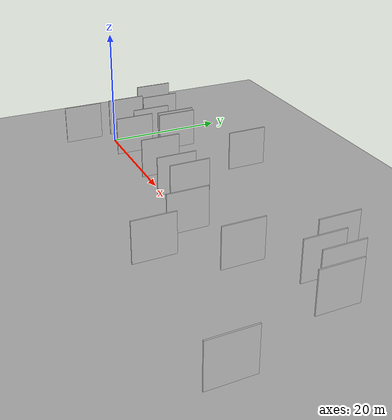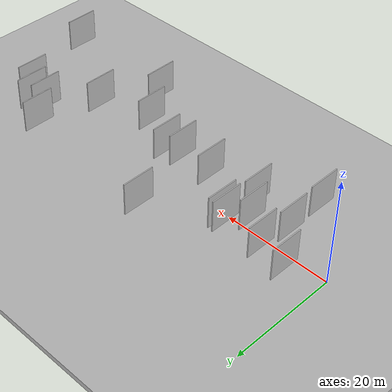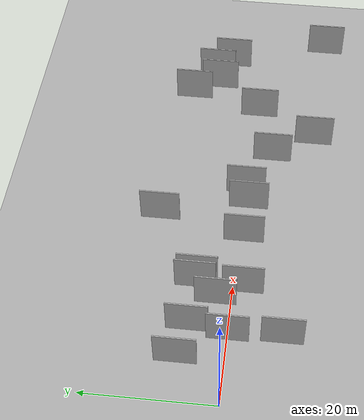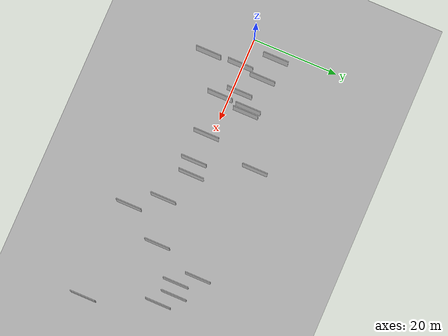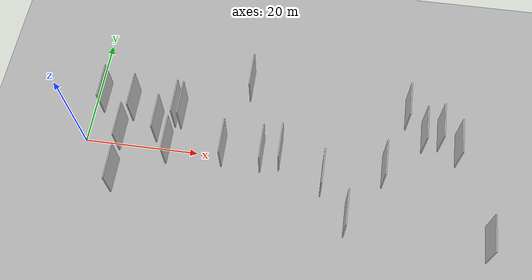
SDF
<?xml version="1.0" encoding="utf-8"?>

<sdf version="1.6">

   <world name="default">

      <gui fullscreen="0">

         <camera name="user_camera">

            <pose>-15 0 4.57585 0 0 0</pose>

            <view_controller>orbit</view_controller>

         </camera>

      </gui>

      <scene>

         <sky>

           <clouds>

             <speed>12</speed>

           </clouds>

         </sky>

         <ambient>0.4 0.4 0.4 1</ambient>

         <background>0.7 0.7 0.7 1</background>

         <shadows>1</shadows>

      </scene>

      <gravity>0 0 -9.8066</gravity>

      <magnetic_field>6e-06 2.3e-05 -4.2e-05</magnetic_field>

      <physics default="0" name="default_physics" type="ode">

         <ode>

            <solver>

               <type>quick</type>

               <iters>10</iters>

               <sor>1.0</sor>

               <use_dynamic_moi_rescaling>0</use_dynamic_moi_rescaling>

            </solver>

            <constraints>

               <cfm>0</cfm>

               <erp>0.2</erp>

               <contact_max_correcting_vel>100</contact_max_correcting_vel>

               <contact_surface_layer>0.001</contact_surface_layer>

            </constraints>

         </ode>

         <max_step_size>0.004</max_step_size>

         <real_time_factor>1</real_time_factor>

         <real_time_update_rate>250</real_time_update_rate>

      </physics>

      <light name="sun" type="directional">

         <cast_shadows>1</cast_shadows>

         <pose>0 0 10 0 0 0</pose>

         <diffuse>0.8 0.8 0.8 1</diffuse>

         <specular>0.2 0.2 0.2 1</specular>

         <attenuation>

            <range>1000</range>

            <constant>0.9</constant>

            <linear>0.01</linear>

            <quadratic>0.001</quadratic>

         </attenuation>

         <direction>-0.5 0.1 -0.9</direction>

      </light>

      <include>

         <name>ground_plane_1</name>

         <uri>model://HANNAS_ground_plane</uri>

         <pose>0 0 0  0 0 0</pose>

      </include>

      <include>

         <name>ground_plane_2</name>

         <uri>model://HANNAS_ground_plane</uri>

         <pose>100 0 0  0 0 0</pose>

      </include>

      <model name="HANNAS_wall_1">

         <static>1</static>

         <pose frame="">63.9856 4.0435 5.0 0.000000 0.000000 1.570796</pose>

         <link name="link">

            <pose frame="">0 0 3.00 0 0 0</pose>

            <collision name="collision">

               <geometry>

                  <box>

                     <size>6.00 0.2 6.00</size>

                  </box>

               </geometry>

               <max_contacts>10</max_contacts>

               <surface>

                  <contact>

                     <ode/>

                  </contact>

                  <bounce/>

                  <friction>

                     <torsional>

                        <ode/>

                     </torsional>

                     <ode/>

                  </friction>

               </surface>

            </collision>

            <visual name="visual">

               <cast_shadows>0</cast_shadows>

               <geometry>

                  <box>

                     <size>6.00 0.2 6.00</size>

                  </box>

               </geometry>

               <material>

                  <script>

                     <uri>model://HANNAS_wall/materials/scripts</uri>

                     <uri>model://HANNAS_wall/materials/textures</uri>

                     <name>vrc/HANNAS_wall</name>

                  </script>

               </material>

            </visual>

            <self_collide>0</self_collide>

            <enable_wind>0</enable_wind>

            <kinematic>0</kinematic>

         </link>

      </model>

      <model name="HANNAS_wall_2">

         <static>1</static>

         <pose frame="">55.3651 9.8947 5.0 0.000000 0.000000 1.570796</pose>

         <link name="link">

            <pose frame="">0 0 3.00 0 0 0</pose>

            <collision name="collision">

               <geometry>

                  <box>

                     <size>6.00 0.2 6.00</size>

                  </box>

               </geometry>

               <max_contacts>10</max_contacts>

               <surface>

                  <contact>

                     <ode/>

                  </contact>

                  <bounce/>

                  <friction>

                     <torsional>

                        <ode/>

                     </torsional>

                     <ode/>

                  </friction>

               </surface>

            </collision>

            <visual name="visual">

               <cast_shadows>0</cast_shadows>

               <geometry>

                  <box>

                     <size>6.00 0.2 6.00</size>

                  </box>

               </geometry>

               <material>

                  <script>

                     <uri>model://HANNAS_wall/materials/scripts</uri>

                     <uri>model://HANNAS_wall/materials/textures</uri>

                     <name>vrc/HANNAS_wall</name>

                  </script>

               </material>

            </visual>

            <self_collide>0</self_collide>

            <enable_wind>0</enable_wind>

            <kinematic>0</kinematic>

         </link>

      </model>

      <model name="HANNAS_wall_3">

         <static>1</static>

         <pose frame="">16.2559 5.2080 5.0 0.000000 0.000000 1.570796</pose>

         <link name="link">

            <pose frame="">0 0 3.00 0 0 0</pose>

            <collision name="collision">

               <geometry>

                  <box>

                     <size>6.00 0.2 6.00</size>

                  </box>

               </geometry>

               <max_contacts>10</max_contacts>

               <surface>

                  <contact>

                     <ode/>

                  </contact>

                  <bounce/>

                  <friction>

                     <torsional>

                        <ode/>

                     </torsional>

                     <ode/>

                  </friction>

               </surface>

            </collision>

            <visual name="visual">

               <cast_shadows>0</cast_shadows>

               <geometry>

                  <box>

                     <size>6.00 0.2 6.00</size>

                  </box>

               </geometry>

               <material>

                  <script>

                     <uri>model://HANNAS_wall/materials/scripts</uri>

                     <uri>model://HANNAS_wall/materials/textures</uri>

                     <name>vrc/HANNAS_wall</name>

                  </script>

               </material>

            </visual>

            <self_collide>0</self_collide>

            <enable_wind>0</enable_wind>

            <kinematic>0</kinematic>

         </link>

      </model>

      <model name="HANNAS_wall_4">

         <static>1</static>

         <pose frame="">17.2977 5.0388 5.0 0.000000 0.000000 1.570796</pose>

         <link name="link">

            <pose frame="">0 0 3.00 0 0 0</pose>

            <collision name="collision">

               <geometry>

                  <box>

                     <size>6.00 0.2 6.00</size>

                  </box>

               </geometry>

               <max_contacts>10</max_contacts>

               <surface>

                  <contact>

                     <ode/>

                  </contact>

                  <bounce/>

                  <friction>

                     <torsional>

                        <ode/>

                     </torsional>

                     <ode/>

                  </friction>

               </surface>

            </collision>

            <visual name="visual">

               <cast_shadows>0</cast_shadows>

               <geometry>

                  <box>

                     <size>6.00 0.2 6.00</size>

                  </box>

               </geometry>

               <material>

                  <script>

                     <uri>model://HANNAS_wall/materials/scripts</uri>

                     <uri>model://HANNAS_wall/materials/textures</uri>

                     <name>vrc/HANNAS_wall</name>

                  </script>

               </material>

            </visual>

            <self_collide>0</self_collide>

            <enable_wind>0</enable_wind>

            <kinematic>0</kinematic>

         </link>

      </model>

      <model name="HANNAS_wall_5">

         <static>1</static>

         <pose frame="">52.0070 -1.3309 5.0 0.000000 0.000000 1.570796</pose>

         <link name="link">

            <pose frame="">0 0 3.00 0 0 0</pose>

            <collision name="collision">

               <geometry>

                  <box>

                     <size>6.00 0.2 6.00</size>

                  </box>

               </geometry>

               <max_contacts>10</max_contacts>

               <surface>

                  <contact>

                     <ode/>

                  </contact>

                  <bounce/>

                  <friction>

                     <torsional>

                        <ode/>

                     </torsional>

                     <ode/>

                  </friction>

               </surface>

            </collision>

            <visual name="visual">

               <cast_shadows>0</cast_shadows>

               <geometry>

                  <box>

                     <size>6.00 0.2 6.00</size>

                  </box>

               </geometry>

               <material>

                  <script>

                     <uri>model://HANNAS_wall/materials/scripts</uri>

                     <uri>model://HANNAS_wall/materials/textures</uri>

                     <name>vrc/HANNAS_wall</name>

                  </script>

               </material>

            </visual>

            <self_collide>0</self_collide>

            <enable_wind>0</enable_wind>

            <kinematic>0</kinematic>

         </link>

      </model>

      <model name="HANNAS_wall_6">

         <static>1</static>

         <pose frame="">61.0086 6.5382 5.0 0.000000 0.000000 1.570796</pose>

         <link name="link">

            <pose frame="">0 0 3.00 0 0 0</pose>

            <collision name="collision">

               <geometry>

                  <box>

                     <size>6.00 0.2 6.00</size>

                  </box>

               </geometry>

               <max_contacts>10</max_contacts>

               <surface>

                  <contact>

                     <ode/>

                  </contact>

                  <bounce/>

                  <friction>

                     <torsional>

                        <ode/>

                     </torsional>

                     <ode/>

                  </friction>

               </surface>

            </collision>

            <visual name="visual">

               <cast_shadows>0</cast_shadows>

               <geometry>

                  <box>

                     <size>6.00 0.2 6.00</size>

                  </box>

               </geometry>

               <material>

                  <script>

                     <uri>model://HANNAS_wall/materials/scripts</uri>

                     <uri>model://HANNAS_wall/materials/textures</uri>

                     <name>vrc/HANNAS_wall</name>

                  </script>

               </material>

            </visual>

            <self_collide>0</self_collide>

            <enable_wind>0</enable_wind>

            <kinematic>0</kinematic>

         </link>

      </model>

      <model name="HANNAS_wall_7">

         <static>1</static>

         <pose frame="">16.0173 -1.7031 5.0 0.000000 0.000000 1.570796</pose>

         <link name="link">

            <pose frame="">0 0 3.00 0 0 0</pose>

            <collision name="collision">

               <geometry>

                  <box>

                     <size>6.00 0.2 6.00</size>

                  </box>

               </geometry>

               <max_contacts>10</max_contacts>

               <surface>

                  <contact>

                     <ode/>

                  </contact>

                  <bounce/>

                  <friction>

                     <torsional>

                        <ode/>

                     </torsional>

                     <ode/>

                  </friction>

               </surface>

            </collision>

            <visual name="visual">

               <cast_shadows>0</cast_shadows>

               <geometry>

                  <box>

                     <size>6.00 0.2 6.00</size>

                  </box>

               </geometry>

               <material>

                  <script>

                     <uri>model://HANNAS_wall/materials/scripts</uri>

                     <uri>model://HANNAS_wall/materials/textures</uri>

                     <name>vrc/HANNAS_wall</name>

                  </script>

               </material>

            </visual>

            <self_collide>0</self_collide>

            <enable_wind>0</enable_wind>

            <kinematic>0</kinematic>

         </link>

      </model>

      <model name="HANNAS_wall_8">

         <static>1</static>

         <pose frame="">8.1097 -7.8598 5.0 0.000000 0.000000 1.570796</pose>

         <link name="link">

            <pose frame="">0 0 3.00 0 0 0</pose>

            <collision name="collision">

               <geometry>

                  <box>

                     <size>6.00 0.2 6.00</size>

                  </box>

               </geometry>

               <max_contacts>10</max_contacts>

               <surface>

                  <contact>

                     <ode/>

                  </contact>

                  <bounce/>

                  <friction>

                     <torsional>

                        <ode/>

                     </torsional>

                     <ode/>

                  </friction>

               </surface>

            </collision>

            <visual name="visual">

               <cast_shadows>0</cast_shadows>

               <geometry>

                  <box>

                     <size>6.00 0.2 6.00</size>

                  </box>

               </geometry>

               <material>

                  <script>

                     <uri>model://HANNAS_wall/materials/scripts</uri>

                     <uri>model://HANNAS_wall/materials/textures</uri>

                     <name>vrc/HANNAS_wall</name>

                  </script>

               </material>

            </visual>

            <self_collide>0</self_collide>

            <enable_wind>0</enable_wind>

            <kinematic>0</kinematic>

         </link>

      </model>

      <model name="HANNAS_wall_9">

         <static>1</static>

         <pose frame="">42.1483 -4.1487 5.0 0.000000 0.000000 1.570796</pose>

         <link name="link">

            <pose frame="">0 0 3.00 0 0 0</pose>

            <collision name="collision">

               <geometry>

                  <box>

                     <size>6.00 0.2 6.00</size>

                  </box>

               </geometry>

               <max_contacts>10</max_contacts>

               <surface>

                  <contact>

                     <ode/>

                  </contact>

                  <bounce/>

                  <friction>

                     <torsional>

                        <ode/>

                     </torsional>

                     <ode/>

                  </friction>

               </surface>

            </collision>

            <visual name="visual">

               <cast_shadows>0</cast_shadows>

               <geometry>

                  <box>

                     <size>6.00 0.2 6.00</size>

                  </box>

               </geometry>

               <material>

                  <script>

                     <uri>model://HANNAS_wall/materials/scripts</uri>

                     <uri>model://HANNAS_wall/materials/textures</uri>

                     <name>vrc/HANNAS_wall</name>

                  </script>

               </material>

            </visual>

            <self_collide>0</self_collide>

            <enable_wind>0</enable_wind>

            <kinematic>0</kinematic>

         </link>

      </model>

      <model name="HANNAS_wall_10">

         <static>1</static>

         <pose frame="">58.2810 5.8237 5.0 0.000000 0.000000 1.570796</pose>

         <link name="link">

            <pose frame="">0 0 3.00 0 0 0</pose>

            <collision name="collision">

               <geometry>

                  <box>

                     <size>6.00 0.2 6.00</size>

                  </box>

               </geometry>

               <max_contacts>10</max_contacts>

               <surface>

                  <contact>

                     <ode/>

                  </contact>

                  <bounce/>

                  <friction>

                     <torsional>

                        <ode/>

                     </torsional>

                     <ode/>

                  </friction>

               </surface>

            </collision>

            <visual name="visual">

               <cast_shadows>0</cast_shadows>

               <geometry>

                  <box>

                     <size>6.00 0.2 6.00</size>

                  </box>

               </geometry>

               <material>

                  <script>

                     <uri>model://HANNAS_wall/materials/scripts</uri>

                     <uri>model://HANNAS_wall/materials/textures</uri>

                     <name>vrc/HANNAS_wall</name>

                  </script>

               </material>

            </visual>

            <self_collide>0</self_collide>

            <enable_wind>0</enable_wind>

            <kinematic>0</kinematic>

         </link>

      </model>

      <model name="HANNAS_wall_11">

         <static>1</static>

         <pose frame="">3.5035 6.4516 5.0 0.000000 0.000000 1.570796</pose>

         <link name="link">

            <pose frame="">0 0 3.00 0 0 0</pose>

            <collision name="collision">

               <geometry>

                  <box>

                     <size>6.00 0.2 6.00</size>

                  </box>

               </geometry>

               <max_contacts>10</max_contacts>

               <surface>

                  <contact>

                     <ode/>

                  </contact>

                  <bounce/>

                  <friction>

                     <torsional>

                        <ode/>

                     </torsional>

                     <ode/>

                  </friction>

               </surface>

            </collision>

            <visual name="visual">

               <cast_shadows>0</cast_shadows>

               <geometry>

                  <box>

                     <size>6.00 0.2 6.00</size>

                  </box>

               </geometry>

               <material>

                  <script>

                     <uri>model://HANNAS_wall/materials/scripts</uri>

                     <uri>model://HANNAS_wall/materials/textures</uri>

                     <name>vrc/HANNAS_wall</name>

                  </script>

               </material>

            </visual>

            <self_collide>0</self_collide>

            <enable_wind>0</enable_wind>

            <kinematic>0</kinematic>

         </link>

      </model>

      <model name="HANNAS_wall_12">

         <static>1</static>

         <pose frame="">13.6636 2.0164 5.0 0.000000 0.000000 1.570796</pose>

         <link name="link">

            <pose frame="">0 0 3.00 0 0 0</pose>

            <collision name="collision">

               <geometry>

                  <box>

                     <size>6.00 0.2 6.00</size>

                  </box>

               </geometry>

               <max_contacts>10</max_contacts>

               <surface>

                  <contact>

                     <ode/>

                  </contact>

                  <bounce/>

                  <friction>

                     <torsional>

                        <ode/>

                     </torsional>

                     <ode/>

                  </friction>

               </surface>

            </collision>

            <visual name="visual">

               <cast_shadows>0</cast_shadows>

               <geometry>

                  <box>

                     <size>6.00 0.2 6.00</size>

                  </box>

               </geometry>

               <material>

                  <script>

                     <uri>model://HANNAS_wall/materials/scripts</uri>

                     <uri>model://HANNAS_wall/materials/textures</uri>

                     <name>vrc/HANNAS_wall</name>

                  </script>

               </material>

            </visual>

            <self_collide>0</self_collide>

            <enable_wind>0</enable_wind>

            <kinematic>0</kinematic>

         </link>

      </model>

      <model name="HANNAS_wall_13">

         <static>1</static>

         <pose frame="">69.0546 -11.7639 5.0 0.000000 0.000000 1.570796</pose>

         <link name="link">

            <pose frame="">0 0 3.00 0 0 0</pose>

            <collision name="collision">

               <geometry>

                  <box>

                     <size>6.00 0.2 6.00</size>

                  </box>

               </geometry>

               <max_contacts>10</max_contacts>

               <surface>

                  <contact>

                     <ode/>

                  </contact>

                  <bounce/>

                  <friction>

                     <torsional>

                        <ode/>

                     </torsional>

                     <ode/>

                  </friction>

               </surface>

            </collision>

            <visual name="visual">

               <cast_shadows>0</cast_shadows>

               <geometry>

                  <box>

                     <size>6.00 0.2 6.00</size>

                  </box>

               </geometry>

               <material>

                  <script>

                     <uri>model://HANNAS_wall/materials/scripts</uri>

                     <uri>model://HANNAS_wall/materials/textures</uri>

                     <name>vrc/HANNAS_wall</name>

                  </script>

               </material>

            </visual>

            <self_collide>0</self_collide>

            <enable_wind>0</enable_wind>

            <kinematic>0</kinematic>

         </link>

      </model>

      <model name="HANNAS_wall_14">

         <static>1</static>

         <pose frame="">31.8124 -1.2147 5.0 0.000000 0.000000 1.570796</pose>

         <link name="link">

            <pose frame="">0 0 3.00 0 0 0</pose>

            <collision name="collision">

               <geometry>

                  <box>

                     <size>6.00 0.2 6.00</size>

                  </box>

               </geometry>

               <max_contacts>10</max_contacts>

               <surface>

                  <contact>

                     <ode/>

                  </contact>

                  <bounce/>

                  <friction>

                     <torsional>

                        <ode/>

                     </torsional>

                     <ode/>

                  </friction>

               </surface>

            </collision>

            <visual name="visual">

               <cast_shadows>0</cast_shadows>

               <geometry>

                  <box>

                     <size>6.00 0.2 6.00</size>

                  </box>

               </geometry>

               <material>

                  <script>

                     <uri>model://HANNAS_wall/materials/scripts</uri>

                     <uri>model://HANNAS_wall/materials/textures</uri>

                     <name>vrc/HANNAS_wall</name>

                  </script>

               </material>

            </visual>

            <self_collide>0</self_collide>

            <enable_wind>0</enable_wind>

            <kinematic>0</kinematic>

         </link>

      </model>

      <model name="HANNAS_wall_15">

         <static>1</static>

         <pose frame="">7.8110 -0.2627 5.0 0.000000 0.000000 1.570796</pose>

         <link name="link">

            <pose frame="">0 0 3.00 0 0 0</pose>

            <collision name="collision">

               <geometry>

                  <box>

                     <size>6.00 0.2 6.00</size>

                  </box>

               </geometry>

               <max_contacts>10</max_contacts>

               <surface>

                  <contact>

                     <ode/>

                  </contact>

                  <bounce/>

                  <friction>

                     <torsional>

                        <ode/>

                     </torsional>

                     <ode/>

                  </friction>

               </surface>

            </collision>

            <visual name="visual">

               <cast_shadows>0</cast_shadows>

               <geometry>

                  <box>

                     <size>6.00 0.2 6.00</size>

                  </box>

               </geometry>

               <material>

                  <script>

                     <uri>model://HANNAS_wall/materials/scripts</uri>

                     <uri>model://HANNAS_wall/materials/textures</uri>

                     <name>vrc/HANNAS_wall</name>

                  </script>

               </material>

            </visual>

            <self_collide>0</self_collide>

            <enable_wind>0</enable_wind>

            <kinematic>0</kinematic>

         </link>

      </model>

      <model name="HANNAS_wall_16">

         <static>1</static>

         <pose frame="">8.8293 5.5021 5.0 0.000000 0.000000 1.570796</pose>

         <link name="link">

            <pose frame="">0 0 3.00 0 0 0</pose>

            <collision name="collision">

               <geometry>

                  <box>

                     <size>6.00 0.2 6.00</size>

                  </box>

               </geometry>

               <max_contacts>10</max_contacts>

               <surface>

                  <contact>

                     <ode/>

                  </contact>

                  <bounce/>

                  <friction>

                     <torsional>

                        <ode/>

                     </torsional>

                     <ode/>

                  </friction>

               </surface>

            </collision>

            <visual name="visual">

               <cast_shadows>0</cast_shadows>

               <geometry>

                  <box>

                     <size>6.00 0.2 6.00</size>

                  </box>

               </geometry>

               <material>

                  <script>

                     <uri>model://HANNAS_wall/materials/scripts</uri>

                     <uri>model://HANNAS_wall/materials/textures</uri>

                     <name>vrc/HANNAS_wall</name>

                  </script>

               </material>

            </visual>

            <self_collide>0</self_collide>

            <enable_wind>0</enable_wind>

            <kinematic>0</kinematic>

         </link>

      </model>

      <model name="HANNAS_wall_17">

         <static>1</static>

         <pose frame="">25.2646 -1.0385 5.0 0.000000 0.000000 1.570796</pose>

         <link name="link">

            <pose frame="">0 0 3.00 0 0 0</pose>

            <collision name="collision">

               <geometry>

                  <box>

                     <size>6.00 0.2 6.00</size>

                  </box>

               </geometry>

               <max_contacts>10</max_contacts>

               <surface>

                  <contact>

                     <ode/>

                  </contact>

                  <bounce/>

                  <friction>

                     <torsional>

                        <ode/>

                     </torsional>

                     <ode/>

                  </friction>

               </surface>

            </collision>

            <visual name="visual">

               <cast_shadows>0</cast_shadows>

               <geometry>

                  <box>

                     <size>6.00 0.2 6.00</size>

                  </box>

               </geometry>

               <material>

                  <script>

                     <uri>model://HANNAS_wall/materials/scripts</uri>

                     <uri>model://HANNAS_wall/materials/textures</uri>

                     <name>vrc/HANNAS_wall</name>

                  </script>

               </material>

            </visual>

            <self_collide>0</self_collide>

            <enable_wind>0</enable_wind>

            <kinematic>0</kinematic>

         </link>

      </model>

      <model name="HANNAS_wall_18">

         <static>1</static>

         <pose frame="">34.8495 -0.5521 5.0 0.000000 0.000000 1.570796</pose>

         <link name="link">

            <pose frame="">0 0 3.00 0 0 0</pose>

            <collision name="collision">

               <geometry>

                  <box>

                     <size>6.00 0.2 6.00</size>

                  </box>

               </geometry>

               <max_contacts>10</max_contacts>

               <surface>

                  <contact>

                     <ode/>

                  </contact>

                  <bounce/>

                  <friction>

                     <torsional>

                        <ode/>

                     </torsional>

                     <ode/>

                  </friction>

               </surface>

            </collision>

            <visual name="visual">

               <cast_shadows>0</cast_shadows>

               <geometry>

                  <box>

                     <size>6.00 0.2 6.00</size>

                  </box>

               </geometry>

               <material>

                  <script>

                     <uri>model://HANNAS_wall/materials/scripts</uri>

                     <uri>model://HANNAS_wall/materials/textures</uri>

                     <name>vrc/HANNAS_wall</name>

                  </script>

               </material>

            </visual>

            <self_collide>0</self_collide>

            <enable_wind>0</enable_wind>

            <kinematic>0</kinematic>

         </link>

      </model>

      <model name="HANNAS_wall_19">

         <static>1</static>

         <pose frame="">28.3064 11.9829 5.0 0.000000 0.000000 1.570796</pose>

         <link name="link">

            <pose frame="">0 0 3.00 0 0 0</pose>

            <collision name="collision">

               <geometry>

                  <box>

                     <size>6.00 0.2 6.00</size>

                  </box>

               </geometry>

               <max_contacts>10</max_contacts>

               <surface>

                  <contact>

                     <ode/>

                  </contact>

                  <bounce/>

                  <friction>

                     <torsional>

                        <ode/>

                     </torsional>

                     <ode/>

                  </friction>

               </surface>

            </collision>

            <visual name="visual">

               <cast_shadows>0</cast_shadows>

               <geometry>

                  <box>

                     <size>6.00 0.2 6.00</size>

                  </box>

               </geometry>

               <material>

                  <script>

                     <uri>model://HANNAS_wall/materials/scripts</uri>

                     <uri>model://HANNAS_wall/materials/textures</uri>

                     <name>vrc/HANNAS_wall</name>

                  </script>

               </material>

            </visual>

            <self_collide>0</self_collide>

            <enable_wind>0</enable_wind>

            <kinematic>0</kinematic>

         </link>

      </model>

      <model name="HANNAS_wall_20">

         <static>1</static>

         <pose frame="">46.5104 -10.5612 5.0 0.000000 0.000000 1.570796</pose>

         <link name="link">

            <pose frame="">0 0 3.00 0 0 0</pose>

            <collision name="collision">

               <geometry>

                  <box>

                     <size>6.00 0.2 6.00</size>

                  </box>

               </geometry>

               <max_contacts>10</max_contacts>

               <surface>

                  <contact>

                     <ode/>

                  </contact>

                  <bounce/>

                  <friction>

                     <torsional>

                        <ode/>

                     </torsional>

                     <ode/>

                  </friction>

               </surface>

            </collision>

            <visual name="visual">

               <cast_shadows>0</cast_shadows>

               <geometry>

                  <box>

                     <size>6.00 0.2 6.00</size>

                  </box>

               </geometry>

               <material>

                  <script>

                     <uri>model://HANNAS_wall/materials/scripts</uri>

                     <uri>model://HANNAS_wall/materials/textures</uri>

                     <name>vrc/HANNAS_wall</name>

                  </script>

               </material>

            </visual>

            <self_collide>0</self_collide>

            <enable_wind>0</enable_wind>

            <kinematic>0</kinematic>

         </link>

      </model>

   </world>

</sdf>

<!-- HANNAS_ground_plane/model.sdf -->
<sdf version="1.4">
<model name="HANNAS_ground_plane">
  <static>true</static>
    <link name="link">
      <collision name="collision">
        <geometry>
          <plane>
            <normal>0 0 1</normal>
            <size>1000 1000</size>
          </plane>
        </geometry>
        <surface>
          <friction>
            <ode>
              <mu>100</mu>
              <mu2>50</mu2>
            </ode>
          </friction>
        </surface>
      </collision>
      <visual name="visual">
        <cast_shadows>false</cast_shadows>
        <geometry>
          <plane>
            <normal>0 0 1</normal>
            <size>1000 1000</size>
          </plane>
        </geometry>
        <material>
          <script>
            <uri>model://HANNAS_ground_plane/materials/scripts/HANNAS_ground_plane.material</uri>
	    <uri>model://HANNAS_ground_plane/materials/textures</uri>
            <name>HANNASGroundPlane/Image</name>
          </script>
        </material>
      </visual>
    </link>
  </model>
</sdf>
